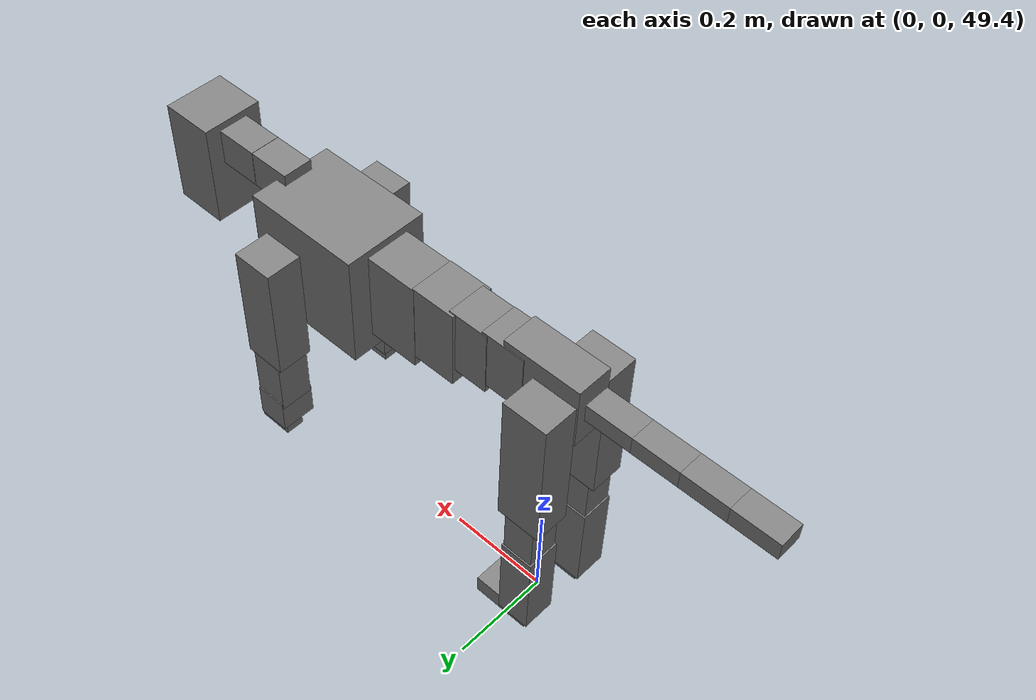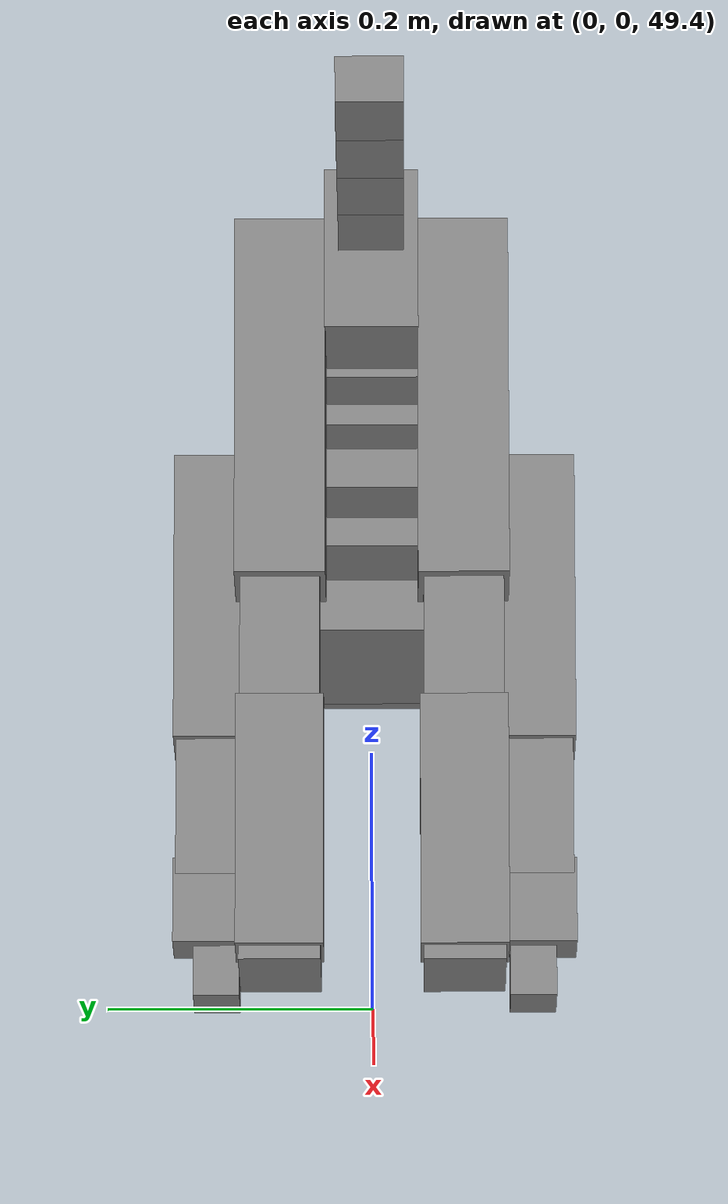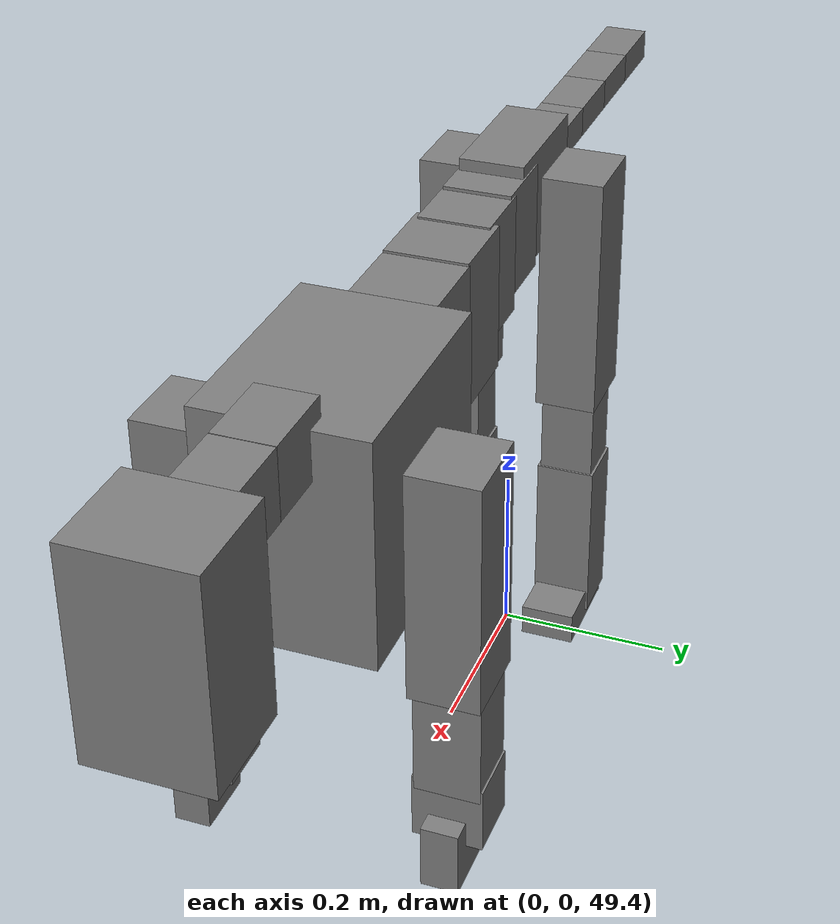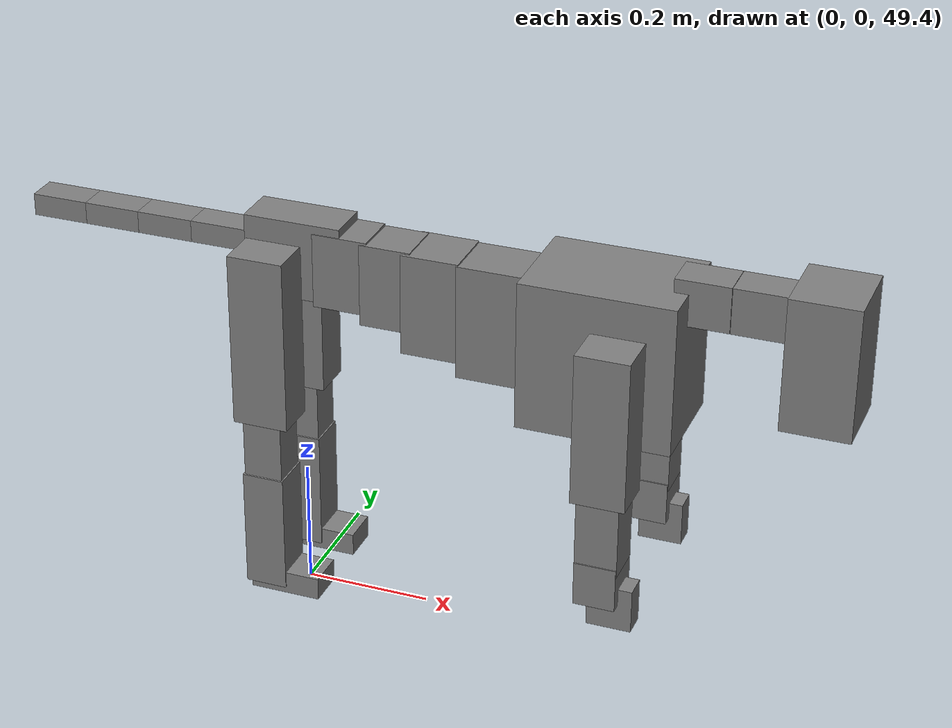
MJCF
<mujoco model="dog">

    <default>
        <joint armature="0.02" stiffness="1" damping="0.2" limited="true"/>
        <geom condim="3" friction="1 0.05 0.05" margin="0.01"/>
        <motor ctrllimited="true" ctrlrange="-1.0 1.0" forcelimited="true" gear="50"/>
    </default>

    <compiler inertiafromgeom="true" angle="radian"/>

    <option timestep="0.016" iterations="50" tolerance="1e-10" solver="Newton" jacobian="dense" cone="pyramidal"/>

    <size nconmax="20000" njmax="60000" nstack="5000000"/>
    <visual>
        <map force="0.1" zfar="30"/>
        <rgba haze="0.15 0.25 0.35 1"/>
        <quality shadowsize="2048"/>
        <global offwidth="800" offheight="800"/>
    </visual>

    <asset>
        <texture type="skybox" builtin="gradient" rgb1="0.3 0.5 0.7" rgb2="0 0 0" width="512" height="512"/>
        <texture name="texplane" type="2d" builtin="checker" rgb1=".2 .3 .4" rgb2=".1 0.15 0.2" width="512" height="512"
                 mark="cross" markrgb=".8 .8 .8"/>
        <texture name="texgeom" type="cube" builtin="flat" mark="cross" width="127" height="1278" rgb1="0.8 0.6 0.4"
                 rgb2="0.8 0.6 0.4" markrgb="1 1 1" random="0.01"/>

        <material name="matplane" reflectance="0.3" texture="texplane" texrepeat="1 1" texuniform="true"/>
        <material name="matgeom" texture="texgeom" texuniform="true" rgba="0.8 0.6 .4 1"/>
    </asset>

    <worldbody>
        <geom name="floor" pos="0 0 0" size="0 0 .25" type="plane" material="matplane" condim="3"/>

        <light directional="false" diffuse=".2 .2 .2" specular="0 0 0" pos="0 0 5" dir="0 0 -1" castshadow="false"/>
        <light mode="targetbodycom" target="torso" directional="false" diffuse=".8 .8 .8" specular="0.3 0.3 0.3"
               pos="0 0 4.0" dir="0 0 -1"/>

        <body name="root" pos="0 0 50">
            <freejoint name="root_1"/>
            <geom type="box" pos="0 0 -0.02" size="0.0774  0.0358  0.063" density="2030"/>

            <body name="spine1" pos="0.054 0 0">
                <joint name="spine1_y" axis="0 1 0" range="0 0.7" limited="true"/>
                <geom type="box" pos="0.02375 0 -0.03" size="0.04375  0.0375  0.05985" density="2030"/>

                <body name="spine2" pos="0.0612 0 0">
                    <joint name="spine2_y" axis="0 1 0" range="-0.15 0.15" limited="true"/>
                    <geom type="box" pos="0.03555  0  -0.04" size="0.04055  0.039  0.06615" density="2030"/>

                    <body name="spine3" pos="0.0730 0 0">
                        <joint name="spine3_y" axis="0 1 0" range="-0.15 0.15" limited="true"/>
                        <geom type="box" pos="0.03555  0  -0.057" size="0.04555  0.0445  0.081" density="2030"/>

                        <body name="spine4" pos="0.0780 0 0">
                            <joint name="spine4_y" axis="0 1 0" range="-0.15 0.15" limited="true"/>
                            <geom type="box" pos="0.05265  0  -0.07" size="0.05265  0.045  0.09135" density="2030"/>

                            <body name="torso" pos="0.1082 0 0">
                                <joint name="torso_y" axis="0 1 0" range="-0.15 0.15" limited="true"/>
                                <geom type="box" pos="0.11925  0  -0.085" size="0.11925  0.085  0.11745"
                                      density="2030"/>

                                <body name="neck1" pos="0.2160  0   0.0180">
                                    <joint name="neck1_y" axis="0 1 0" range="-1.2  -1" limited="true"/>
                                    <geom type="box" pos="0.0423  0  0" size="0.0423  0.03  0.036" density="2325"/>

                                    <body name="neck2" pos="0.0853  0  0">
                                        <joint name="neck2_y" axis="0 1 0" range="0.1  0" limited="true"/>
                                        <geom type="box" pos="0.0423  0  0" size="0.0423  0.03  0.036" density="2325"/>

                                        <body name="head" pos="0.0853  0  0">
                                            <joint name="head_y" axis="0 1 0" range="-0.3  -0.2" limited="true"/>
                                            <geom type="box" pos="0.0531  0  -0.055" size="0.0531  0.06  0.1044"
                                                  density="4030"/>

                                        </body>
                                    </body>
                                </body>

                                <body name="front_shoulder" pos="0.156  0   -0.0480">
                                    <joint name="front_shoulder_y" axis="0 1 0" range="-1 1.5" limited="true"/>
                                    <geom type="box" pos="0 0.13 -0.0935" size="0.0416  0.0355  0.1201" density="1158"/>
                                    <geom type="box" pos="0 -0.13 -0.0935" size="0.0416  0.0355  0.1201"
                                          density="1158"/>

                                    <body name="front_elbow" pos="0  0  -0.1869">
                                        <joint name="front_elbow_y" axis="0 1 0" range="-2 0" limited="true"/>
                                        <geom type="box" pos="0 0.13 -0.0702" size="0.0326  0.0333  0.0702"
                                              density="1081"/>
                                        <geom type="box" pos="0 -0.13 -0.0702" size="0.0326  0.0333  0.0702"
                                              density="1081"/>

                                        <body name="front_wrist" pos="0  0  -0.1404">
                                            <joint name="front_wrist_y" axis="0 1 0" range="-0.2 0" limited="true"/>
                                            <geom type="box" pos="0 0.13 -0.0218" size="0.0320  0.0355  0.0349"
                                                  density="1664"/>
                                            <geom type="box" pos="0 -0.13 -0.0218" size="0.0320  0.0355  0.0349"
                                                  density="1664"/>

                                            <body name="front_finger_end" pos="0  0  -0.0436">
                                                <joint name="front_finger_y" axis="0 1 0" range="-0.4 1"
                                                       limited="true"/>
                                                <geom type="box" pos="0.0189  0.13  -0.0197"
                                                      size="0.0346  0.0189  0.0347" density="1515"/>
                                                <geom type="box" pos="0.0189  -0.13  -0.0197"
                                                      size="0.0346  0.0189  0.0347" density="1515"/>

                                            </body>

                                        </body>
                                    </body>
                                </body>

                            </body>
                        </body>
                    </body>
                </body>
            </body>

            <body name="back_hip" pos="-0.03 0 -0.018">
                <joint name="back_hip_y" axis="0 1 0" range="-1.5 0.3" limited="true"/>
                <geom type="box" pos="0 0.07 -0.1176" size="0.0443  0.0347  0.1404" density="1154"/>
                <geom type="box" pos="0 -0.07 -0.1176" size="0.0443  0.0347  0.1404" density="1154"/>

                <body name="back_knee" pos="0  0  -0.2352">
                    <joint name="back_knee_y" axis="0 1 0" range="0 2.8" limited="true"/>
                    <geom type="box" pos="0 0.07 -0.0633" size="0.0309  0.0305  0.0789" density="1227"/>
                    <geom type="box" pos="0 -0.07 -0.0633" size="0.0309  0.0305  0.0789" density="1227"/>

                    <body name="back_ankle" pos="0  0  -0.1267">
                        <joint name="back_ankle_y" axis="0 1 0" range="-2.2 0" limited="true"/>
                        <geom type="box" pos="0 0.07 -0.0856" size="0.0334  0.0334  0.0969" density="1284"/>
                        <geom type="box" pos="0 -0.07 -0.0856" size="0.0334  0.0334  0.0969" density="1284"/>

                        <body name="back_toe_end" pos="0  0  -0.1713">
                            <joint name="back_toe_y" axis="0 1 0" range="-0.4 1" limited="true"/>
                            <geom type="box" pos="0.0311  0.07  -0.0034" size="0.0571  0.0311  0.0184" density="1515"/>
                            <geom type="box" pos="0.0311  -0.07  -0.0034" size="0.0571  0.0311  0.0184" density="1515"/>

                        </body>
                    </body>
                </body>
            </body>

            <body name="tail1" pos="-0.074 0 -0.006">
                <joint name="tail1_y" axis="0 1 0" range="-0.2 0.2" limited="true"/>
                <geom type="box" pos="-0.0536  0  0" size="0.045  0.025  0.0175" density="1587"/>

                <body name="tail2" pos="-0.09 0 0">
                    <joint name="tail2_y" axis="0 1 0" range="-0.2 0.2" limited="true"/>
                    <geom type="box" pos="-0.0536  0  0" size="0.045  0.025  0.0175" density="1587"/>

                    <body name="tail3" pos="-0.09 0 0">
                        <joint name="tail3_y" axis="0 1 0" range="-0.2 0.2" limited="true"/>
                        <geom type="box" pos="-0.0536  0  0" size="0.045  0.025  0.0175" density="1587"/>

                        <body name="tail4" pos="-0.09 0 0">
                            <joint name="tail4_y" axis="0 1 0" range="-0.2 0.2" limited="true"/>
                            <geom type="box" pos="-0.0536  0  0" size="0.045  0.025  0.0175" density="1587"/>

                        </body>
                    </body>
                </body>
            </body>
        </body>
    </worldbody>

    <actuator>
        <motor joint="spine1_y" forcerange="-150 150     "/>
        <motor joint="spine2_y" forcerange="-150 150     "/>
        <motor joint="spine3_y" forcerange="-150 150     "/>
        <motor joint="spine4_y" forcerange="-150 150     "/>
        <motor joint="torso_y" forcerange="-150 150     "/>
        <motor joint="neck1_y" forcerange="-100 100       "/>
        <motor joint="neck2_y" forcerange="-100 100       "/>
        <motor joint="head_y" forcerange="-150 150       "/>
        <motor joint="front_shoulder_y" forcerange="-155.85 181.13"/>
        <motor joint="front_elbow_y" forcerange="-173.88 168.31"/>
        <motor joint="front_wrist_y" forcerange="-145.66 138.49"/>
        <motor joint="front_finger_y" forcerange="-36.60 24.10"/>
        <motor joint="back_hip_y" forcerange="-357.60 305.62"/>
        <motor joint="back_knee_y" forcerange="-319.62 323.77"/>
        <motor joint="back_angle_y" forcerange="-248.76 186.29"/>
        <motor joint="back_toe_y" forcerange="-69.80 99.31"/>
        <motor joint="tail1_y" forcerange="-50 50     "/>
        <motor joint="tail2_y" forcerange="-50 50     "/>
        <motor joint="tail3_y" forcerange="-50 50     "/>
        <motor joint="tail4_y" forcerange="-50 50     "/>
    </actuator>
</mujoco>
